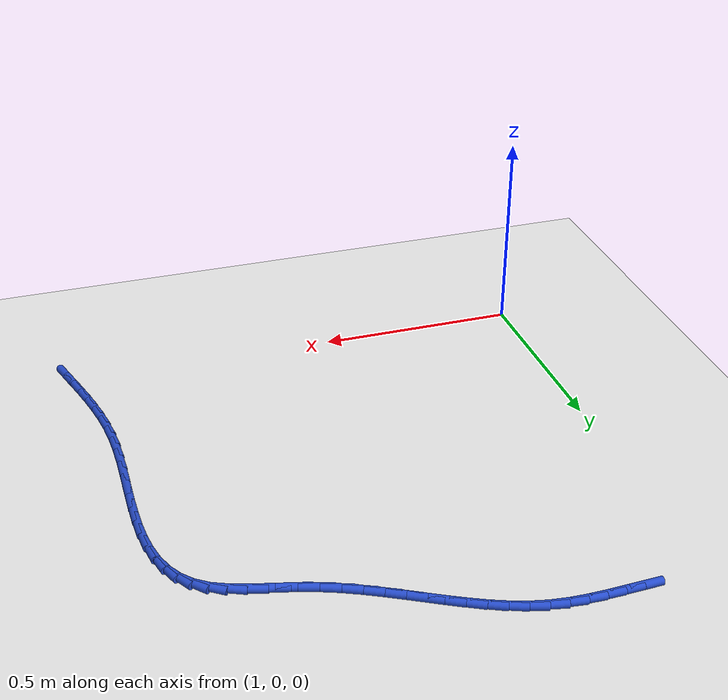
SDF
<sdf version="1.6">
 <world name="default">
  <model name="ground_plane">
   <static>1</static>
   <link name="link">
    <collision name="collision">
     <geometry><plane><normal>0 0 1</normal><size>100 100</size></plane></geometry>
     <surface><friction><ode><mu>100</mu><mu2>50</mu2></ode></friction></surface>
    </collision>
    <visual name="visual">
     <cast_shadows>0</cast_shadows>
     <geometry><plane><normal>0 0 1</normal><size>100 100</size></plane></geometry>
     <material>
      <script><uri>file://media/materials/scripts/gazebo.material</uri><name>Gazebo/WhiteGlow</name></script>
     </material>
    </visual>
   </link>
  </model>
  <model name="line">
   <link name="link_41">
    <pose>1.1571128575357317 1.155158650677829 0.01 0 1.57 0.04873802280955987</pose>
    <collision name="collision">
     <geometry><cylinder><radius>0.01</radius><length>0.08</length></cylinder></geometry>
    </collision>
    <visual name="visual">
     <material>
      <script><name>Gazebo/Blue</name><uri>file://media/materials/scripts/gazebo.material</uri></script>
     </material>
     <geometry><cylinder><radius>0.01</radius><length>0.08</length></cylinder></geometry>
    </visual>
   </link>
   <link name="link_42">
    <pose>1.2023685064215683 1.157366069632889 0.01 0 1.57 0.043871357113652434</pose>
    <collision name="collision">
     <geometry><cylinder><radius>0.01</radius><length>0.08</length></cylinder></geometry>
    </collision>
    <visual name="visual">
     <material>
      <script><name>Gazebo/Blue</name><uri>file://media/materials/scripts/gazebo.material</uri></script>
     </material>
     <geometry><cylinder><radius>0.01</radius><length>0.08</length></cylinder></geometry>
    </visual>
   </link>
   <link name="link_43">
    <pose>1.246742785435816 1.1593140794101016 0.01 0 1.57 0.016420565573988834</pose>
    <collision name="collision">
     <geometry><cylinder><radius>0.01</radius><length>0.08</length></cylinder></geometry>
    </collision>
    <visual name="visual">
     <material>
      <script><name>Gazebo/Blue</name><uri>file://media/materials/scripts/gazebo.material</uri></script>
     </material>
     <geometry><cylinder><radius>0.01</radius><length>0.08</length></cylinder></geometry>
    </visual>
   </link>
   <link name="link_44">
    <pose>1.290213985042246 1.1600279652578362 0.01 0 1.57 -0.0351225412080842</pose>
    <collision name="collision">
     <geometry><cylinder><radius>0.01</radius><length>0.08</length></cylinder></geometry>
    </collision>
    <visual name="visual">
     <material>
      <script><name>Gazebo/Blue</name><uri>file://media/materials/scripts/gazebo.material</uri></script>
     </material>
     <geometry><cylinder><radius>0.01</radius><length>0.08</length></cylinder></geometry>
    </visual>
   </link>
   <link name="link_45">
    <pose>1.3327603957046292 1.1585330124244628 0.01 0 1.57 -0.11199373843666105</pose>
    <collision name="collision">
     <geometry><cylinder><radius>0.01</radius><length>0.08</length></cylinder></geometry>
    </collision>
    <visual name="visual">
     <material>
      <script><name>Gazebo/Blue</name><uri>file://media/materials/scripts/gazebo.material</uri></script>
     </material>
     <geometry><cylinder><radius>0.01</radius><length>0.08</length></cylinder></geometry>
    </visual>
   </link>
   <link name="link_46">
    <pose>1.3743603078867341 1.1538545061583505 0.01 0 1.57 -0.21078741598733972</pose>
    <collision name="collision">
     <geometry><cylinder><radius>0.01</radius><length>0.08</length></cylinder></geometry>
    </collision>
    <visual name="visual">
     <material>
      <script><name>Gazebo/Blue</name><uri>file://media/materials/scripts/gazebo.material</uri></script>
     </material>
     <geometry><cylinder><radius>0.01</radius><length>0.08</length></cylinder></geometry>
    </visual>
   </link>
   <link name="link_47">
    <pose>1.4150138104141474 1.1451560481546044 0.01 0 1.57 -0.3042017643822353</pose>
    <collision name="collision">
     <geometry><cylinder><radius>0.01</radius><length>0.08</length></cylinder></geometry>
    </collision>
    <visual name="visual">
     <material>
      <script><name>Gazebo/Blue</name><uri>file://media/materials/scripts/gazebo.material</uri></script>
     </material>
     <geometry><cylinder><radius>0.01</radius><length>0.08</length></cylinder></geometry>
    </visual>
   </link>
   <link name="link_48">
    <pose>1.4548845089174283 1.1326387980513701 0.01 0 1.57 -0.3790475046889929</pose>
    <collision name="collision">
     <geometry><cylinder><radius>0.01</radius><length>0.08</length></cylinder></geometry>
    </collision>
    <visual name="visual">
     <material>
      <script><name>Gazebo/Blue</name><uri>file://media/materials/scripts/gazebo.material</uri></script>
     </material>
     <geometry><cylinder><radius>0.01</radius><length>0.08</length></cylinder></geometry>
    </visual>
   </link>
   <link name="link_49">
    <pose>1.494210252837821 1.1169750123597295 0.01 0 1.57 -0.4350863418128398</pose>
    <collision name="collision">
     <geometry><cylinder><radius>0.01</radius><length>0.08</length></cylinder></geometry>
    </collision>
    <visual name="visual">
     <material>
      <script><name>Gazebo/Blue</name><uri>file://media/materials/scripts/gazebo.material</uri></script>
     </material>
     <geometry><cylinder><radius>0.01</radius><length>0.08</length></cylinder></geometry>
    </visual>
   </link>
   <link name="link_50">
    <pose>1.5332292627851345 1.098839302754758 0.01 0 1.57 -0.4730055033617569</pose>
    <collision name="collision">
     <geometry><cylinder><radius>0.01</radius><length>0.08</length></cylinder></geometry>
    </collision>
    <visual name="visual">
     <material>
      <script><name>Gazebo/Blue</name><uri>file://media/materials/scripts/gazebo.material</uri></script>
     </material>
     <geometry><cylinder><radius>0.01</radius><length>0.08</length></cylinder></geometry>
    </visual>
   </link>
   <link name="link_51">
    <pose>1.572179759369175 1.0789062809115295 0.01 0 1.57 -0.49376294823729433</pose>
    <collision name="collision">
     <geometry><cylinder><radius>0.01</radius><length>0.08</length></cylinder></geometry>
    </collision>
    <visual name="visual">
     <material>
      <script><name>Gazebo/Blue</name><uri>file://media/materials/scripts/gazebo.material</uri></script>
     </material>
     <geometry><cylinder><radius>0.01</radius><length>0.08</length></cylinder></geometry>
    </visual>
   </link>
   <link name="link_52">
    <pose>1.6112999631997522 1.0578505585051194 0.01 0 1.57 -0.49823492725935536</pose>
    <collision name="collision">
     <geometry><cylinder><radius>0.01</radius><length>0.08</length></cylinder></geometry>
    </collision>
    <visual name="visual">
     <material>
      <script><name>Gazebo/Blue</name><uri>file://media/materials/scripts/gazebo.material</uri></script>
     </material>
     <geometry><cylinder><radius>0.01</radius><length>0.08</length></cylinder></geometry>
    </visual>
   </link>
   <link name="link_53">
    <pose>1.650828094886672 1.036346747210602 0.01 0 1.57 -0.4870654870112347</pose>
    <collision name="collision">
     <geometry><cylinder><radius>0.01</radius><length>0.08</length></cylinder></geometry>
    </collision>
    <visual name="visual">
     <material>
      <script><name>Gazebo/Blue</name><uri>file://media/materials/scripts/gazebo.material</uri></script>
     </material>
     <geometry><cylinder><radius>0.01</radius><length>0.08</length></cylinder></geometry>
    </visual>
   </link>
   <link name="link_54">
    <pose>1.6910023750397438 1.015069458703052 0.01 0 1.57 -0.4606587329476451</pose>
    <collision name="collision">
     <geometry><cylinder><radius>0.01</radius><length>0.08</length></cylinder></geometry>
    </collision>
    <visual name="visual">
     <material>
      <script><name>Gazebo/Blue</name><uri>file://media/materials/scripts/gazebo.material</uri></script>
     </material>
     <geometry><cylinder><radius>0.01</radius><length>0.08</length></cylinder></geometry>
    </visual>
   </link>
   <link name="link_55">
    <pose>1.7320610242687746 0.994693304657544 0.01 0 1.57 -0.4192768380145108</pose>
    <collision name="collision">
     <geometry><cylinder><radius>0.01</radius><length>0.08</length></cylinder></geometry>
    </collision>
    <visual name="visual">
     <material>
      <script><name>Gazebo/Blue</name><uri>file://media/materials/scripts/gazebo.material</uri></script>
     </material>
     <geometry><cylinder><radius>0.01</radius><length>0.08</length></cylinder></geometry>
    </visual>
   </link>
   <link name="link_56">
    <pose>1.7742422631835724 0.9758928967491531 0.01 0 1.57 -0.36322871391904715</pose>
    <collision name="collision">
     <geometry><cylinder><radius>0.01</radius><length>0.08</length></cylinder></geometry>
    </collision>
    <visual name="visual">
     <material>
      <script><name>Gazebo/Blue</name><uri>file://media/materials/scripts/gazebo.material</uri></script>
     </material>
     <geometry><cylinder><radius>0.01</radius><length>0.08</length></cylinder></geometry>
    </visual>
   </link>
   <link name="link_57">
    <pose>1.8177843123939452 0.9593428466529542 0.01 0 1.57 -0.2954070629744661</pose>
    <collision name="collision">
     <geometry><cylinder><radius>0.01</radius><length>0.08</length></cylinder></geometry>
    </collision>
    <visual name="visual">
     <material>
      <script><name>Gazebo/Blue</name><uri>file://media/materials/scripts/gazebo.material</uri></script>
     </material>
     <geometry><cylinder><radius>0.01</radius><length>0.08</length></cylinder></geometry>
    </visual>
   </link>
   <link name="link_58">
    <pose>1.8628540300178067 0.9456276392439706 0.01 0 1.57 -0.2498878609789018</pose>
    <collision name="collision">
     <geometry><cylinder><radius>0.01</radius><length>0.08</length></cylinder></geometry>
    </collision>
    <visual name="visual">
     <material>
      <script><name>Gazebo/Blue</name><uri>file://media/materials/scripts/gazebo.material</uri></script>
     </material>
     <geometry><cylinder><radius>0.01</radius><length>0.08</length></cylinder></geometry>
    </visual>
   </link>
   <link name="link_59">
    <pose>1.9085384145220865 0.9339679575979397 0.01 0 1.57 -0.2513917049845334</pose>
    <collision name="collision">
     <geometry><cylinder><radius>0.01</radius><length>0.08</length></cylinder></geometry>
    </collision>
    <visual name="visual">
     <material>
      <script><name>Gazebo/Blue</name><uri>file://media/materials/scripts/gazebo.material</uri></script>
     </material>
     <geometry><cylinder><radius>0.01</radius><length>0.08</length></cylinder></geometry>
    </visual>
   </link>
   <link name="link_60">
    <pose>1.9530869719489894 0.9225267791205228 0.01 0 1.57 -0.30451966435565186</pose>
    <collision name="collision">
     <geometry><cylinder><radius>0.01</radius><length>0.08</length></cylinder></geometry>
    </collision>
    <visual name="visual">
     <material>
      <script><name>Gazebo/Blue</name><uri>file://media/materials/scripts/gazebo.material</uri></script>
     </material>
     <geometry><cylinder><radius>0.01</radius><length>0.08</length></cylinder></geometry>
    </visual>
   </link>
   <link name="link_61">
    <pose>1.9947273030990926 0.9094394161333896 0.01 0 1.57 -0.42209693320861746</pose>
    <collision name="collision">
     <geometry><cylinder><radius>0.01</radius><length>0.08</length></cylinder></geometry>
    </collision>
    <visual name="visual">
     <material>
      <script><name>Gazebo/Blue</name><uri>file://media/materials/scripts/gazebo.material</uri></script>
     </material>
     <geometry><cylinder><radius>0.01</radius><length>0.08</length></cylinder></geometry>
    </visual>
   </link>
   <link name="link_62">
    <pose>2.0316870087729737 0.8928411809582103 0.01 0 1.57 -0.6189009591467636</pose>
    <collision name="collision">
     <geometry><cylinder><radius>0.01</radius><length>0.08</length></cylinder></geometry>
    </collision>
    <visual name="visual">
     <material>
      <script><name>Gazebo/Blue</name><uri>file://media/materials/scripts/gazebo.material</uri></script>
     </material>
     <geometry><cylinder><radius>0.01</radius><length>0.08</length></cylinder></geometry>
    </visual>
   </link>
   <link name="link_63">
    <pose>2.0623388024996623 0.8710094064817644 0.01 0 1.57 -0.8467380979680816</pose>
    <collision name="collision">
     <geometry><cylinder><radius>0.01</radius><length>0.08</length></cylinder></geometry>
    </collision>
    <visual name="visual">
     <material>
      <script><name>Gazebo/Blue</name><uri>file://media/materials/scripts/gazebo.material</uri></script>
     </material>
     <geometry><cylinder><radius>0.01</radius><length>0.08</length></cylinder></geometry>
    </visual>
   </link>
   <link name="link_64">
    <pose>2.086524150275121 0.843658880854676 0.01 0 1.57 -1.0529227244560257</pose>
    <collision name="collision">
     <geometry><cylinder><radius>0.01</radius><length>0.08</length></cylinder></geometry>
    </collision>
    <visual name="visual">
     <material>
      <script><name>Gazebo/Blue</name><uri>file://media/materials/scripts/gazebo.material</uri></script>
     </material>
     <geometry><cylinder><radius>0.01</radius><length>0.08</length></cylinder></geometry>
    </visual>
   </link>
   <link name="link_65">
    <pose>2.104937836101641 0.811339527138002 0.01 0 1.57 -1.2222245061837407</pose>
    <collision name="collision">
     <geometry><cylinder><radius>0.01</radius><length>0.08</length></cylinder></geometry>
    </collision>
    <visual name="visual">
     <material>
      <script><name>Gazebo/Blue</name><uri>file://media/materials/scripts/gazebo.material</uri></script>
     </material>
     <geometry><cylinder><radius>0.01</radius><length>0.08</length></cylinder></geometry>
    </visual>
   </link>
   <link name="link_66">
    <pose>2.1182851733218304 0.7746115733665817 0.01 0 1.57 -1.3528475350625297</pose>
    <collision name="collision">
     <geometry><cylinder><radius>0.01</radius><length>0.08</length></cylinder></geometry>
    </collision>
    <visual name="visual">
     <material>
      <script><name>Gazebo/Blue</name><uri>file://media/materials/scripts/gazebo.material</uri></script>
     </material>
     <geometry><cylinder><radius>0.01</radius><length>0.08</length></cylinder></geometry>
    </visual>
   </link>
   <link name="link_67">
    <pose>2.127271475278296 0.7340352475752551 0.01 0 1.57 -1.4498654368503014</pose>
    <collision name="collision">
     <geometry><cylinder><radius>0.01</radius><length>0.08</length></cylinder></geometry>
    </collision>
    <visual name="visual">
     <material>
      <script><name>Gazebo/Blue</name><uri>file://media/materials/scripts/gazebo.material</uri></script>
     </material>
     <geometry><cylinder><radius>0.01</radius><length>0.08</length></cylinder></geometry>
    </visual>
   </link>
   <link name="link_68">
    <pose>2.1326020553136464 0.6901707777988607 0.01 0 1.57 -1.5197557079551678</pose>
    <collision name="collision">
     <geometry><cylinder><radius>0.01</radius><length>0.08</length></cylinder></geometry>
    </collision>
    <visual name="visual">
     <material>
      <script><name>Gazebo/Blue</name><uri>file://media/materials/scripts/gazebo.material</uri></script>
     </material>
     <geometry><cylinder><radius>0.01</radius><length>0.08</length></cylinder></geometry>
    </visual>
   </link>
   <link name="link_69">
    <pose>2.134982226770488 0.6435783920722391 0.01 0 1.57 -1.5680261120408368</pose>
    <collision name="collision">
     <geometry><cylinder><radius>0.01</radius><length>0.08</length></cylinder></geometry>
    </collision>
    <visual name="visual">
     <material>
      <script><name>Gazebo/Blue</name><uri>file://media/materials/scripts/gazebo.material</uri></script>
     </material>
     <geometry><cylinder><radius>0.01</radius><length>0.08</length></cylinder></geometry>
    </visual>
   </link>
   <link name="link_70">
    <pose>2.1351173029914294 0.5948183184302296 0.01 0 1.57 1.5429144443698208</pose>
    <collision name="collision">
     <geometry><cylinder><radius>0.01</radius><length>0.08</length></cylinder></geometry>
    </collision>
    <visual name="visual">
     <material>
      <script><name>Gazebo/Blue</name><uri>file://media/materials/scripts/gazebo.material</uri></script>
     </material>
     <geometry><cylinder><radius>0.01</radius><length>0.08</length></cylinder></geometry>
    </visual>
   </link>
   <link name="link_71">
    <pose>2.1337125973190787 0.5444507849076707 0.01 0 1.57 1.5272726399565413</pose>
    <collision name="collision">
     <geometry><cylinder><radius>0.01</radius><length>0.08</length></cylinder></geometry>
    </collision>
    <visual name="visual">
     <material>
      <script><name>Gazebo/Blue</name><uri>file://media/materials/scripts/gazebo.material</uri></script>
     </material>
     <geometry><cylinder><radius>0.01</radius><length>0.08</length></cylinder></geometry>
    </visual>
   </link>
   <link name="link_72">
    <pose>2.1314734230960433 0.49303601953940324 0.01 0 1.57 1.525196961875671</pose>
    <collision name="collision">
     <geometry><cylinder><radius>0.01</radius><length>0.08</length></cylinder></geometry>
    </collision>
    <visual name="visual">
     <material>
      <script><name>Gazebo/Blue</name><uri>file://media/materials/scripts/gazebo.material</uri></script>
     </material>
     <geometry><cylinder><radius>0.01</radius><length>0.08</length></cylinder></geometry>
    </visual>
   </link>
   <link name="link_73">
    <pose>2.12910509366493 0.4411342503602661 0.01 0 1.57 1.5362312524247037</pose>
    <collision name="collision">
     <geometry><cylinder><radius>0.01</radius><length>0.08</length></cylinder></geometry>
    </collision>
    <visual name="visual">
     <material>
      <script><name>Gazebo/Blue</name><uri>file://media/materials/scripts/gazebo.material</uri></script>
     </material>
     <geometry><cylinder><radius>0.01</radius><length>0.08</length></cylinder></geometry>
    </visual>
   </link>
   <link name="link_74">
    <pose>2.127312922368348 0.3893057054050982 0.01 0 1.57 1.560821095706672</pose>
    <collision name="collision">
     <geometry><cylinder><radius>0.01</radius><length>0.08</length></cylinder></geometry>
    </collision>
    <visual name="visual">
     <material>
      <script><name>Gazebo/Blue</name><uri>file://media/materials/scripts/gazebo.material</uri></script>
     </material>
     <geometry><cylinder><radius>0.01</radius><length>0.08</length></cylinder></geometry>
    </visual>
   </link>
   <link name="link_75">
    <pose>2.1268022225489043 0.33811061270874027 0.01 0 1.57 -1.5412840318444692</pose>
    <collision name="collision">
     <geometry><cylinder><radius>0.01</radius><length>0.08</length></cylinder></geometry>
    </collision>
    <visual name="visual">
     <material>
      <script><name>Gazebo/Blue</name><uri>file://media/materials/scripts/gazebo.material</uri></script>
     </material>
     <geometry><cylinder><radius>0.01</radius><length>0.08</length></cylinder></geometry>
    </visual>
   </link>
   <link name="link_76">
    <pose>2.1282783075492064 0.28810920030603104 0.01 0 1.57 -1.4878564782083938</pose>
    <collision name="collision">
     <geometry><cylinder><radius>0.01</radius><length>0.08</length></cylinder></geometry>
    </collision>
    <visual name="visual">
     <material>
      <script><name>Gazebo/Blue</name><uri>file://media/materials/scripts/gazebo.material</uri></script>
     </material>
     <geometry><cylinder><radius>0.01</radius><length>0.08</length></cylinder></geometry>
    </visual>
   </link>
   <link name="link_77">
    <pose>2.1322975016223276 0.23976122432787927 0.01 0 1.57 -1.4355399842145602</pose>
    <collision name="collision">
     <geometry><cylinder><radius>0.01</radius><length>0.08</length></cylinder></geometry>
    </collision>
    <visual name="visual">
     <material>
      <script><name>Gazebo/Blue</name><uri>file://media/materials/scripts/gazebo.material</uri></script>
     </material>
     <geometry><cylinder><radius>0.01</radius><length>0.08</length></cylinder></geometry>
    </visual>
   </link>
   <link name="link_78">
    <pose>2.1386589523724764 0.19301583318378168 0.01 0 1.57 -1.3905914639191375</pose>
    <collision name="collision">
     <geometry><cylinder><radius>0.01</radius><length>0.08</length></cylinder></geometry>
    </collision>
    <visual name="visual">
     <material>
      <script><name>Gazebo/Blue</name><uri>file://media/materials/scripts/gazebo.material</uri></script>
     </material>
     <geometry><cylinder><radius>0.01</radius><length>0.08</length></cylinder></geometry>
    </visual>
   </link>
   <link name="link_79">
    <pose>2.146921864673398 0.1476603681130616 0.01 0 1.57 -1.3541539418036366</pose>
    <collision name="collision">
     <geometry><cylinder><radius>0.01</radius><length>0.08</length></cylinder></geometry>
    </collision>
    <visual name="visual">
     <material>
      <script><name>Gazebo/Blue</name><uri>file://media/materials/scripts/gazebo.material</uri></script>
     </material>
     <geometry><cylinder><radius>0.01</radius><length>0.08</length></cylinder></geometry>
    </visual>
   </link>
   <link name="link_80">
    <pose>2.156645347340759 0.10348210557756427 0.01 0 1.57 -1.3271310527742706</pose>
    <collision name="collision">
     <geometry><cylinder><radius>0.01</radius><length>0.08</length></cylinder></geometry>
    </collision>
    <visual name="visual">
     <material>
      <script><name>Gazebo/Blue</name><uri>file://media/materials/scripts/gazebo.material</uri></script>
     </material>
     <geometry><cylinder><radius>0.01</radius><length>0.08</length></cylinder></geometry>
    </visual>
   </link>
   <link name="link_81">
    <pose>2.16738850919023 0.06026832203913367 0.01 0 1.57 -1.310221586917291</pose>
    <collision name="collision">
     <geometry><cylinder><radius>0.01</radius><length>0.08</length></cylinder></geometry>
    </collision>
    <visual name="visual">
     <material>
      <script><name>Gazebo/Blue</name><uri>file://media/materials/scripts/gazebo.material</uri></script>
     </material>
     <geometry><cylinder><radius>0.01</radius><length>0.08</length></cylinder></geometry>
    </visual>
   </link>
   <link name="link_82">
    <pose>2.178710459037477 0.01780629395961373 0.01 0 1.57 -1.303960411278415</pose>
    <collision name="collision">
     <geometry><cylinder><radius>0.01</radius><length>0.08</length></cylinder></geometry>
    </collision>
    <visual name="visual">
     <material>
      <script><name>Gazebo/Blue</name><uri>file://media/materials/scripts/gazebo.material</uri></script>
     </material>
     <geometry><cylinder><radius>0.01</radius><length>0.08</length></cylinder></geometry>
    </visual>
   </link>
   <link name="link_83">
    <pose>2.190170305698171 -0.02411670219915032 0.01 0 1.57 -1.3087490281460987</pose>
    <collision name="collision">
     <geometry><cylinder><radius>0.01</radius><length>0.08</length></cylinder></geometry>
    </collision>
    <visual name="visual">
     <material>
      <script><name>Gazebo/Blue</name><uri>file://media/materials/scripts/gazebo.material</uri></script>
     </material>
     <geometry><cylinder><radius>0.01</radius><length>0.08</length></cylinder></geometry>
    </visual>
   </link>
  </model>
 </world>
</sdf>
